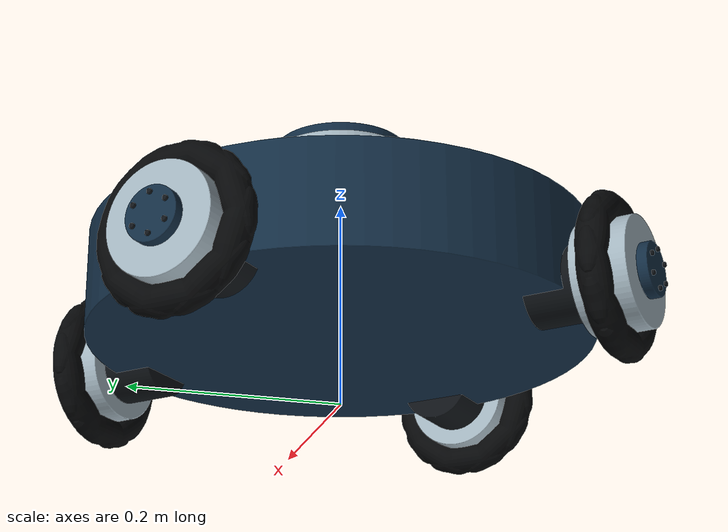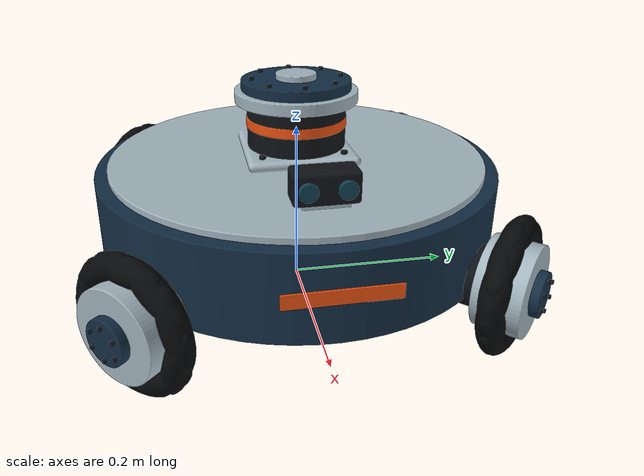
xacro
<?xml version="1.0"?>
<robot xmlns:xacro="http://www.ros.org/wiki/xacro" name="six_arm">
  <xacro:include filename="$(find mybot_description)/urdf/mecanum_visuals.xacro"/>
  <xacro:property name="M_PI" value="3.141592653589793"/>
  <xacro:property name="base_height" value="0.1"/>
  <xacro:property name="base_length" value="0.48"/>
  <xacro:property name="base_width" value="0.40"/>
  <xacro:macro name="mecanum_box_inertia" params="m x y z">
    <inertial><mass value="${m}"/><inertia ixx="${m*(y*y+z*z)/12}" ixy="0" ixz="0" iyy="${m*(x*x+z*z)/12}" iyz="0" izz="${m*(x*x+y*y)/12}"/></inertial>
  </xacro:macro>
  <link name="base_footprint"/>
  <joint name="base_footprint_joint" type="fixed"><parent link="base_footprint"/><child link="base_link"/><origin xyz="0 0 0.11"/></joint>
  <link name="base_link">
    <xacro:mecanum_visual link="base_link"/>
    <collision><geometry><cylinder radius="0.24" length="0.10"/></geometry></collision>
    <collision name="upper_deck"><origin xyz="0 0 0.054"/><geometry><cylinder radius="0.225" length="0.008"/></geometry></collision>
    <collision name="arm_mount"><origin xyz="0 0 0.064"/><geometry><box size="0.13 0.13 0.012"/></geometry></collision>
    <collision name="yaw_motor"><origin xyz="0 0 0.097"/><geometry><cylinder radius="0.06" length="0.054"/></geometry></collision>
    <collision name="yaw_bearing"><origin xyz="0 0 0.131"/><geometry><cylinder radius="0.073" length="0.014"/></geometry></collision>
    <inertial><mass value="6"/><inertia ixx="0.0914" iyy="0.0914" izz="0.1728" ixy="0" ixz="0" iyz="0"/></inertial>
  </link>
  <xacro:macro name="mecanum_wheel" params="prefix x y theta">
    <joint name="${prefix}_wheel_joint" type="continuous"><parent link="base_link"/><child link="${prefix}_wheel_link"/><origin xyz="${x} ${y} -0.035" rpy="0 0 ${theta-(1 if y>0 else -1)*M_PI/2}"/><axis xyz="0 ${1 if y>0 else -1} 0"/><dynamics damping="0.01"/></joint>
    <link name="${prefix}_wheel_link">
      <xacro:mecanum_visual link="${prefix}_wheel_link"/>
      <!-- Simplified support cylinder: planar drive is an ideal kinematic model,
           not a simulation of roller traction or motor torque. -->
      <collision><origin rpy="${M_PI/2} 0 0"/><geometry><cylinder radius="0.075" length="0.06"/></geometry></collision>
      <inertial><mass value="0.7"/><inertia ixx="0.001194" ixy="0" ixz="0" iyy="0.001969" iyz="0" izz="0.001194"/></inertial>
    </link>
    <gazebo reference="${prefix}_wheel_link"><mu1>0.01</mu1><mu2>0.01</mu2><kp>1000000</kp><kd>100</kd><minDepth>0.001</minDepth></gazebo>
  </xacro:macro>
  <xacro:mecanum_wheel prefix="front_left" x="0.195" y="0.195" theta="0.7853981633974483"/>
  <xacro:mecanum_wheel prefix="front_right" x="0.195" y="-0.195" theta="-0.7853981633974483"/>
  <xacro:mecanum_wheel prefix="rear_left" x="-0.195" y="0.195" theta="2.356194490192345"/>
  <xacro:mecanum_wheel prefix="rear_right" x="-0.195" y="-0.195" theta="-2.356194490192345"/>
  <joint name="arm_yaw_joint" type="revolute"><parent link="base_link"/><child link="arm_yaw_link"/><origin xyz="0 0 0.15"/><axis xyz="0 0 1"/><limit lower="${-M_PI}" upper="${M_PI}" effort="20" velocity="1.5"/><dynamics damping="0.1"/></joint>
  <link name="arm_yaw_link"><xacro:mecanum_visual link="arm_yaw_link"/><collision><origin xyz="0 0 -0.006"/><geometry><cylinder radius="0.065" length="0.012"/></geometry></collision><inertial><mass value="0.4"/><inertia ixx="0.00043" ixy="0" ixz="0" iyy="0.00043" iyz="0" izz="0.000845"/></inertial></link>
</robot>

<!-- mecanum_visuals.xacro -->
<robot xmlns:xacro="http://www.ros.org/wiki/xacro">
<xacro:macro name="mecanum_visual" params="link">
<xacro:if value="${link == 'base_link'}">
<visual><geometry><mesh filename="package://mybot_description/meshes/mecanum/base_link_blue_gray_chassis.stl"/></geometry><material name="mecanum_base_link_0"><color rgba="0.07500000298023224 0.18000000715255737 0.27000001072883606 1.0"/></material></visual>
<visual><geometry><mesh filename="package://mybot_description/meshes/mecanum/base_link_light_alloy.stl"/></geometry><material name="mecanum_base_link_1"><color rgba="0.6499999761581421 0.7200000286102295 0.7599999904632568 1.0"/></material></visual>
<visual><geometry><mesh filename="package://mybot_description/meshes/mecanum/base_link_sensor_housing.stl"/></geometry><material name="mecanum_base_link_2"><color rgba="0.054999999701976776 0.07000000029802322 0.08500000089406967 1.0"/></material></visual>
<visual><geometry><mesh filename="package://mybot_description/meshes/mecanum/base_link_front_identification.stl"/></geometry><material name="mecanum_base_link_3"><color rgba="0.949999988079071 0.33000001311302185 0.06499999761581421 1.0"/></material></visual>
<visual><geometry><mesh filename="package://mybot_description/meshes/mecanum/base_link_optical_window.stl"/></geometry><material name="mecanum_base_link_4"><color rgba="0.05999999865889549 0.25 0.3199999928474426 1.0"/></material></visual>
</xacro:if>
<xacro:if value="${link == 'front_left_wheel_link'}">
<visual><geometry><mesh filename="package://mybot_description/meshes/mecanum/front_left_wheel_link_light_alloy.stl"/></geometry><material name="mecanum_front_left_wheel_link_0"><color rgba="0.6499999761581421 0.7200000286102295 0.7599999904632568 1.0"/></material></visual>
<visual><geometry><mesh filename="package://mybot_description/meshes/mecanum/front_left_wheel_link_blue_gray_chassis.stl"/></geometry><material name="mecanum_front_left_wheel_link_1"><color rgba="0.07500000298023224 0.18000000715255737 0.27000001072883606 1.0"/></material></visual>
<visual><geometry><mesh filename="package://mybot_description/meshes/mecanum/front_left_wheel_link_dark_rubber.stl"/></geometry><material name="mecanum_front_left_wheel_link_2"><color rgba="0.02500000037252903 0.029999999329447746 0.03500000014901161 1.0"/></material></visual>
<visual><geometry><mesh filename="package://mybot_description/meshes/mecanum/front_left_wheel_link_sensor_housing.stl"/></geometry><material name="mecanum_front_left_wheel_link_3"><color rgba="0.054999999701976776 0.07000000029802322 0.08500000089406967 1.0"/></material></visual>
</xacro:if>
<xacro:if value="${link == 'front_right_wheel_link'}">
<visual><geometry><mesh filename="package://mybot_description/meshes/mecanum/front_right_wheel_link_light_alloy.stl"/></geometry><material name="mecanum_front_right_wheel_link_0"><color rgba="0.6499999761581421 0.7200000286102295 0.7599999904632568 1.0"/></material></visual>
<visual><geometry><mesh filename="package://mybot_description/meshes/mecanum/front_right_wheel_link_blue_gray_chassis.stl"/></geometry><material name="mecanum_front_right_wheel_link_1"><color rgba="0.07500000298023224 0.18000000715255737 0.27000001072883606 1.0"/></material></visual>
<visual><geometry><mesh filename="package://mybot_description/meshes/mecanum/front_right_wheel_link_dark_rubber.stl"/></geometry><material name="mecanum_front_right_wheel_link_2"><color rgba="0.02500000037252903 0.029999999329447746 0.03500000014901161 1.0"/></material></visual>
<visual><geometry><mesh filename="package://mybot_description/meshes/mecanum/front_right_wheel_link_sensor_housing.stl"/></geometry><material name="mecanum_front_right_wheel_link_3"><color rgba="0.054999999701976776 0.07000000029802322 0.08500000089406967 1.0"/></material></visual>
</xacro:if>
<xacro:if value="${link == 'rear_left_wheel_link'}">
<visual><geometry><mesh filename="package://mybot_description/meshes/mecanum/rear_left_wheel_link_light_alloy.stl"/></geometry><material name="mecanum_rear_left_wheel_link_0"><color rgba="0.6499999761581421 0.7200000286102295 0.7599999904632568 1.0"/></material></visual>
<visual><geometry><mesh filename="package://mybot_description/meshes/mecanum/rear_left_wheel_link_blue_gray_chassis.stl"/></geometry><material name="mecanum_rear_left_wheel_link_1"><color rgba="0.07500000298023224 0.18000000715255737 0.27000001072883606 1.0"/></material></visual>
<visual><geometry><mesh filename="package://mybot_description/meshes/mecanum/rear_left_wheel_link_dark_rubber.stl"/></geometry><material name="mecanum_rear_left_wheel_link_2"><color rgba="0.02500000037252903 0.029999999329447746 0.03500000014901161 1.0"/></material></visual>
<visual><geometry><mesh filename="package://mybot_description/meshes/mecanum/rear_left_wheel_link_sensor_housing.stl"/></geometry><material name="mecanum_rear_left_wheel_link_3"><color rgba="0.054999999701976776 0.07000000029802322 0.08500000089406967 1.0"/></material></visual>
</xacro:if>
<xacro:if value="${link == 'rear_right_wheel_link'}">
<visual><geometry><mesh filename="package://mybot_description/meshes/mecanum/rear_right_wheel_link_light_alloy.stl"/></geometry><material name="mecanum_rear_right_wheel_link_0"><color rgba="0.6499999761581421 0.7200000286102295 0.7599999904632568 1.0"/></material></visual>
<visual><geometry><mesh filename="package://mybot_description/meshes/mecanum/rear_right_wheel_link_blue_gray_chassis.stl"/></geometry><material name="mecanum_rear_right_wheel_link_1"><color rgba="0.07500000298023224 0.18000000715255737 0.27000001072883606 1.0"/></material></visual>
<visual><geometry><mesh filename="package://mybot_description/meshes/mecanum/rear_right_wheel_link_dark_rubber.stl"/></geometry><material name="mecanum_rear_right_wheel_link_2"><color rgba="0.02500000037252903 0.029999999329447746 0.03500000014901161 1.0"/></material></visual>
<visual><geometry><mesh filename="package://mybot_description/meshes/mecanum/rear_right_wheel_link_sensor_housing.stl"/></geometry><material name="mecanum_rear_right_wheel_link_3"><color rgba="0.054999999701976776 0.07000000029802322 0.08500000089406967 1.0"/></material></visual>
</xacro:if>
<xacro:if value="${link == 'arm_yaw_link'}">
<visual><geometry><mesh filename="package://mybot_description/meshes/mecanum/arm_yaw_link_blue_gray_chassis.stl"/></geometry><material name="mecanum_arm_yaw_link_0"><color rgba="0.07500000298023224 0.18000000715255737 0.27000001072883606 1.0"/></material></visual>
<visual><geometry><mesh filename="package://mybot_description/meshes/mecanum/arm_yaw_link_light_alloy.stl"/></geometry><material name="mecanum_arm_yaw_link_1"><color rgba="0.6499999761581421 0.7200000286102295 0.7599999904632568 1.0"/></material></visual>
<visual><geometry><mesh filename="package://mybot_description/meshes/mecanum/arm_yaw_link_sensor_housing.stl"/></geometry><material name="mecanum_arm_yaw_link_2"><color rgba="0.054999999701976776 0.07000000029802322 0.08500000089406967 1.0"/></material></visual>
</xacro:if>
<xacro:if value="${link == 'laser_left_link'}">
<visual><geometry><mesh filename="package://mybot_description/meshes/mecanum/laser_left_link_light_alloy.stl"/></geometry><material name="mecanum_laser_left_link_0"><color rgba="0.6499999761581421 0.7200000286102295 0.7599999904632568 1.0"/></material></visual>
<visual><geometry><mesh filename="package://mybot_description/meshes/mecanum/laser_left_link_sensor_housing.stl"/></geometry><material name="mecanum_laser_left_link_1"><color rgba="0.054999999701976776 0.07000000029802322 0.08500000089406967 1.0"/></material></visual>
<visual><geometry><mesh filename="package://mybot_description/meshes/mecanum/laser_left_link_optical_window.stl"/></geometry><material name="mecanum_laser_left_link_2"><color rgba="0.05999999865889549 0.25 0.3199999928474426 1.0"/></material></visual>
</xacro:if>
<xacro:if value="${link == 'laser_right_link'}">
<visual><geometry><mesh filename="package://mybot_description/meshes/mecanum/laser_right_link_light_alloy.stl"/></geometry><material name="mecanum_laser_right_link_0"><color rgba="0.6499999761581421 0.7200000286102295 0.7599999904632568 1.0"/></material></visual>
<visual><geometry><mesh filename="package://mybot_description/meshes/mecanum/laser_right_link_sensor_housing.stl"/></geometry><material name="mecanum_laser_right_link_1"><color rgba="0.054999999701976776 0.07000000029802322 0.08500000089406967 1.0"/></material></visual>
<visual><geometry><mesh filename="package://mybot_description/meshes/mecanum/laser_right_link_optical_window.stl"/></geometry><material name="mecanum_laser_right_link_2"><color rgba="0.05999999865889549 0.25 0.3199999928474426 1.0"/></material></visual>
</xacro:if>
</xacro:macro>
</robot>
